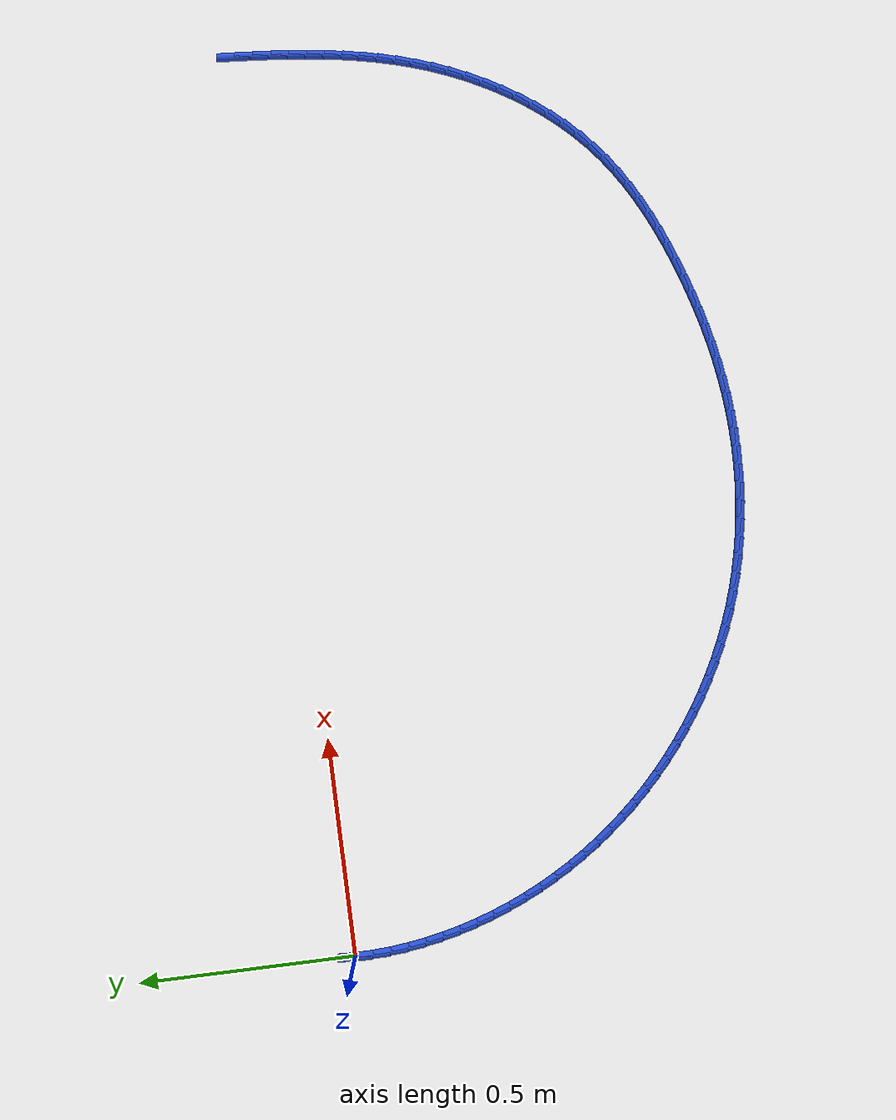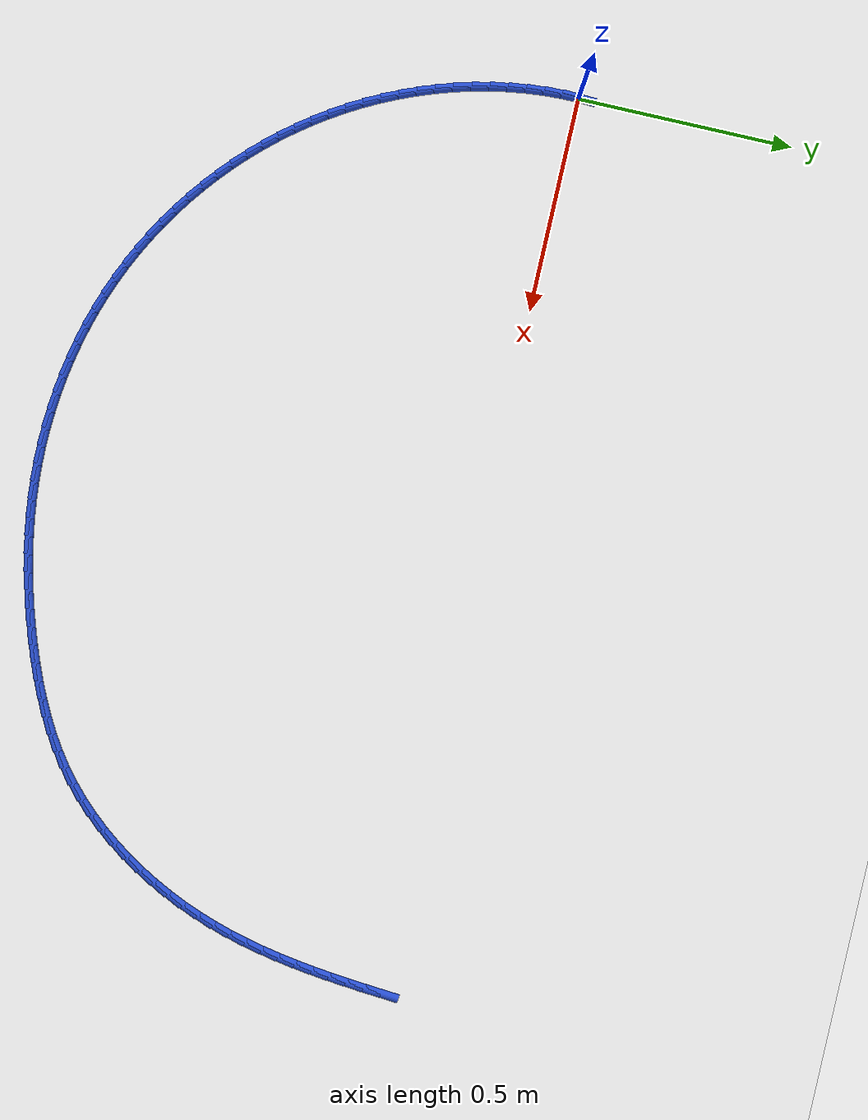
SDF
<sdf version="1.6">
 <world name="default">
  <model name="ground_plane">
   <static>1</static>
   <link name="link">
    <collision name="collision">
     <geometry><plane><normal>0 0 1</normal><size>100 100</size></plane></geometry>
     <surface><friction><ode><mu>100</mu><mu2>50</mu2></ode></friction></surface>
    </collision>
    <visual name="visual">
     <cast_shadows>0</cast_shadows>
     <geometry><plane><normal>0 0 1</normal><size>100 100</size></plane></geometry>
     <material>
      <script><uri>file://media/materials/scripts/gazebo.material</uri><name>Gazebo/WhiteGlow</name></script>
     </material>
    </visual>
   </link>
  </model>
  <model name="line">
   <link name="link_0">
    <pose>-6.938893903907228e-17 5.551115123125783e-17 0.01 0 1.57 1.5295211178930346</pose>
    <collision name="collision">
     <geometry><cylinder><radius>0.01</radius><length>0.08</length></cylinder></geometry>
    </collision>
    <visual name="visual">
     <material>
      <script><name>Gazebo/Blue</name><uri>file://media/materials/scripts/gazebo.material</uri></script>
     </material>
     <geometry><cylinder><radius>0.01</radius><length>0.08</length></cylinder></geometry>
    </visual>
   </link>
   <link name="link_81">
    <pose>2.0990178060190656 0.019875055912803596 0.01 0 1.57 1.4926832107745691</pose>
    <collision name="collision">
     <geometry><cylinder><radius>0.01</radius><length>0.08</length></cylinder></geometry>
    </collision>
    <visual name="visual">
     <material>
      <script><name>Gazebo/Blue</name><uri>file://media/materials/scripts/gazebo.material</uri></script>
     </material>
     <geometry><cylinder><radius>0.01</radius><length>0.08</length></cylinder></geometry>
    </visual>
   </link>
   <link name="link_82">
    <pose>2.0957071992923137 -0.022420921470128787 0.01 0 1.57 1.4836548767339648</pose>
    <collision name="collision">
     <geometry><cylinder><radius>0.01</radius><length>0.08</length></cylinder></geometry>
    </collision>
    <visual name="visual">
     <material>
      <script><name>Gazebo/Blue</name><uri>file://media/materials/scripts/gazebo.material</uri></script>
     </material>
     <geometry><cylinder><radius>0.01</radius><length>0.08</length></cylinder></geometry>
    </visual>
   </link>
   <link name="link_83">
    <pose>2.092038540830168 -0.06441434259548094 0.01 0 1.57 1.4710652988678214</pose>
    <collision name="collision">
     <geometry><cylinder><radius>0.01</radius><length>0.08</length></cylinder></geometry>
    </collision>
    <visual name="visual">
     <material>
      <script><name>Gazebo/Blue</name><uri>file://media/materials/scripts/gazebo.material</uri></script>
     </material>
     <geometry><cylinder><radius>0.01</radius><length>0.08</length></cylinder></geometry>
    </visual>
   </link>
   <link name="link_84">
    <pose>2.087866792371639 -0.10610556188633669 0.01 0 1.57 1.454866451488957</pose>
    <collision name="collision">
     <geometry><cylinder><radius>0.01</radius><length>0.08</length></cylinder></geometry>
    </collision>
    <visual name="visual">
     <material>
      <script><name>Gazebo/Blue</name><uri>file://media/materials/scripts/gazebo.material</uri></script>
     </material>
     <geometry><cylinder><radius>0.01</radius><length>0.08</length></cylinder></geometry>
    </visual>
   </link>
   <link name="link_85">
    <pose>2.0830469156557374 -0.14749493376577896 0.01 0 1.57 1.4350260833197779</pose>
    <collision name="collision">
     <geometry><cylinder><radius>0.01</radius><length>0.08</length></cylinder></geometry>
    </collision>
    <visual name="visual">
     <material>
      <script><name>Gazebo/Blue</name><uri>file://media/materials/scripts/gazebo.material</uri></script>
     </material>
     <geometry><cylinder><radius>0.01</radius><length>0.08</length></cylinder></geometry>
    </visual>
   </link>
   <link name="link_86">
    <pose>2.0774338724214747 -0.1885828126568909 0.01 0 1.57 1.4115346442727235</pose>
    <collision name="collision">
     <geometry><cylinder><radius>0.01</radius><length>0.08</length></cylinder></geometry>
    </collision>
    <visual name="visual">
     <material>
      <script><name>Gazebo/Blue</name><uri>file://media/materials/scripts/gazebo.material</uri></script>
     </material>
     <geometry><cylinder><radius>0.01</radius><length>0.08</length></cylinder></geometry>
    </visual>
   </link>
   <link name="link_87">
    <pose>2.0708826244078598 -0.22936955298275613 0.01 0 1.57 1.3844136220203782</pose>
    <collision name="collision">
     <geometry><cylinder><radius>0.01</radius><length>0.08</length></cylinder></geometry>
    </collision>
    <visual name="visual">
     <material>
      <script><name>Gazebo/Blue</name><uri>file://media/materials/scripts/gazebo.material</uri></script>
     </material>
     <geometry><cylinder><radius>0.01</radius><length>0.08</length></cylinder></geometry>
    </visual>
   </link>
   <link name="link_88">
    <pose>2.063248133353905 -0.26985550916645623 0.01 0 1.57 1.3537249263923825</pose>
    <collision name="collision">
     <geometry><cylinder><radius>0.01</radius><length>0.08</length></cylinder></geometry>
    </collision>
    <visual name="visual">
     <material>
      <script><name>Gazebo/Blue</name><uri>file://media/materials/scripts/gazebo.material</uri></script>
     </material>
     <geometry><cylinder><radius>0.01</radius><length>0.08</length></cylinder></geometry>
    </visual>
   </link>
   <link name="link_89">
    <pose>2.0543853609986216 -0.310041035631075 0.01 0 1.57 1.3195806752709096</pose>
    <collision name="collision">
     <geometry><cylinder><radius>0.01</radius><length>0.08</length></cylinder></geometry>
    </collision>
    <visual name="visual">
     <material>
      <script><name>Gazebo/Blue</name><uri>file://media/materials/scripts/gazebo.material</uri></script>
     </material>
     <geometry><cylinder><radius>0.01</radius><length>0.08</length></cylinder></geometry>
    </visual>
   </link>
   <link name="link_90">
    <pose>2.044149269081018 -0.3499264867996954 0.01 0 1.57 1.2821524114344396</pose>
    <collision name="collision">
     <geometry><cylinder><radius>0.01</radius><length>0.08</length></cylinder></geometry>
    </collision>
    <visual name="visual">
     <material>
      <script><name>Gazebo/Blue</name><uri>file://media/materials/scripts/gazebo.material</uri></script>
     </material>
     <geometry><cylinder><radius>0.01</radius><length>0.08</length></cylinder></geometry>
    </visual>
   </link>
   <link name="link_91">
    <pose>2.032394819340106 -0.3895122170954004 0.01 0 1.57 1.241680064681204</pose>
    <collision name="collision">
     <geometry><cylinder><radius>0.01</radius><length>0.08</length></cylinder></geometry>
    </collision>
    <visual name="visual">
     <material>
      <script><name>Gazebo/Blue</name><uri>file://media/materials/scripts/gazebo.material</uri></script>
     </material>
     <geometry><cylinder><radius>0.01</radius><length>0.08</length></cylinder></geometry>
    </visual>
   </link>
   <link name="link_92">
    <pose>2.0189770824673055 -0.4287984660180517 0.01 0 1.57 1.1990178574637749</pose>
    <collision name="collision">
     <geometry><cylinder><radius>0.01</radius><length>0.08</length></cylinder></geometry>
    </collision>
    <visual name="visual">
     <material>
      <script><name>Gazebo/Blue</name><uri>file://media/materials/scripts/gazebo.material</uri></script>
     </material>
     <geometry><cylinder><radius>0.01</radius><length>0.08</length></cylinder></geometry>
    </visual>
   </link>
   <link name="link_93">
    <pose>2.003792755313101 -0.4677415657101033 0.01 0 1.57 1.1555575199309271</pose>
    <collision name="collision">
     <geometry><cylinder><radius>0.01</radius><length>0.08</length></cylinder></geometry>
    </collision>
    <visual name="visual">
     <material>
      <script><name>Gazebo/Blue</name><uri>file://media/materials/scripts/gazebo.material</uri></script>
     </material>
     <geometry><cylinder><radius>0.01</radius><length>0.08</length></cylinder></geometry>
    </visual>
   </link>
   <link name="link_94">
    <pose>1.9868427681966372 -0.5061879026388773 0.01 0 1.57 1.1111982553909383</pose>
    <collision name="collision">
     <geometry><cylinder><radius>0.01</radius><length>0.08</length></cylinder></geometry>
    </collision>
    <visual name="visual">
     <material>
      <script><name>Gazebo/Blue</name><uri>file://media/materials/scripts/gazebo.material</uri></script>
     </material>
     <geometry><cylinder><radius>0.01</radius><length>0.08</length></cylinder></geometry>
    </visual>
   </link>
   <link name="link_95">
    <pose>1.9681441021813377 -0.5439669329139194 0.01 0 1.57 1.0656135610040476</pose>
    <collision name="collision">
     <geometry><cylinder><radius>0.01</radius><length>0.08</length></cylinder></geometry>
    </collision>
    <visual name="visual">
     <material>
      <script><name>Gazebo/Blue</name><uri>file://media/materials/scripts/gazebo.material</uri></script>
     </material>
     <geometry><cylinder><radius>0.01</radius><length>0.08</length></cylinder></geometry>
    </visual>
   </link>
   <link name="link_96">
    <pose>1.9477137383306284 -0.5809081126447766 0.01 0 1.57 1.0184836160174242</pose>
    <collision name="collision">
     <geometry><cylinder><radius>0.01</radius><length>0.08</length></cylinder></geometry>
    </collision>
    <visual name="visual">
     <material>
      <script><name>Gazebo/Blue</name><uri>file://media/materials/scripts/gazebo.material</uri></script>
     </material>
     <geometry><cylinder><radius>0.01</radius><length>0.08</length></cylinder></geometry>
    </visual>
   </link>
   <link name="link_97">
    <pose>1.9255686577079347 -0.6168408979409933 0.01 0 1.57 0.9694954440958722</pose>
    <collision name="collision">
     <geometry><cylinder><radius>0.01</radius><length>0.08</length></cylinder></geometry>
    </collision>
    <visual name="visual">
     <material>
      <script><name>Gazebo/Blue</name><uri>file://media/materials/scripts/gazebo.material</uri></script>
     </material>
     <geometry><cylinder><radius>0.01</radius><length>0.08</length></cylinder></geometry>
    </visual>
   </link>
   <link name="link_98">
    <pose>1.9017258413766813 -0.6515947449121164 0.01 0 1.57 0.9183454307983163</pose>
    <collision name="collision">
     <geometry><cylinder><radius>0.01</radius><length>0.08</length></cylinder></geometry>
    </collision>
    <visual name="visual">
     <material>
      <script><name>Gazebo/Blue</name><uri>file://media/materials/scripts/gazebo.material</uri></script>
     </material>
     <geometry><cylinder><radius>0.01</radius><length>0.08</length></cylinder></geometry>
    </visual>
   </link>
   <link name="link_99">
    <pose>1.8762022704002934 -0.6849991096676916 0.01 0 1.57 0.8647446873899721</pose>
    <collision name="collision">
     <geometry><cylinder><radius>0.01</radius><length>0.08</length></cylinder></geometry>
    </collision>
    <visual name="visual">
     <material>
      <script><name>Gazebo/Blue</name><uri>file://media/materials/scripts/gazebo.material</uri></script>
     </material>
     <geometry><cylinder><radius>0.01</radius><length>0.08</length></cylinder></geometry>
    </visual>
   </link>
   <link name="link_100">
    <pose>1.8490149258421968 -0.7168834483172654 0.01 0 1.57 0.8084277997164566</pose>
    <collision name="collision">
     <geometry><cylinder><radius>0.01</radius><length>0.08</length></cylinder></geometry>
    </collision>
    <visual name="visual">
     <material>
      <script><name>Gazebo/Blue</name><uri>file://media/materials/scripts/gazebo.material</uri></script>
     </material>
     <geometry><cylinder><radius>0.01</radius><length>0.08</length></cylinder></geometry>
    </visual>
   </link>
   <link name="link_101">
    <pose>1.8201807887658155 -0.7470772169703838 0.01 0 1.57 0.7491654407140631</pose>
    <collision name="collision">
     <geometry><cylinder><radius>0.01</radius><length>0.08</length></cylinder></geometry>
    </collision>
    <visual name="visual">
     <material>
      <script><name>Gazebo/Blue</name><uri>file://media/materials/scripts/gazebo.material</uri></script>
     </material>
     <geometry><cylinder><radius>0.01</radius><length>0.08</length></cylinder></geometry>
    </visual>
   </link>
   <link name="link_102">
    <pose>1.7897168402345756 -0.7754098717365918 0.01 0 1.57 0.6869269722850196</pose>
    <collision name="collision">
     <geometry><cylinder><radius>0.01</radius><length>0.08</length></cylinder></geometry>
    </collision>
    <visual name="visual">
     <material>
      <script><name>Gazebo/Blue</name><uri>file://media/materials/scripts/gazebo.material</uri></script>
     </material>
     <geometry><cylinder><radius>0.01</radius><length>0.08</length></cylinder></geometry>
    </visual>
   </link>
   <link name="link_103">
    <pose>1.757642816170259 -0.8017164361207609 0.01 0 1.57 0.625412291579322</pose>
    <collision name="collision">
     <geometry><cylinder><radius>0.01</radius><length>0.08</length></cylinder></geometry>
    </collision>
    <visual name="visual">
     <material>
      <script><name>Gazebo/Blue</name><uri>file://media/materials/scripts/gazebo.material</uri></script>
     </material>
     <geometry><cylinder><radius>0.01</radius><length>0.08</length></cylinder></geometry>
    </visual>
   </link>
   <link name="link_104">
    <pose>1.7240491503911626 -0.825974809626261 0.01 0 1.57 0.5687668562688685</pose>
    <collision name="collision">
     <geometry><cylinder><radius>0.01</radius><length>0.08</length></cylinder></geometry>
    </collision>
    <visual name="visual">
     <material>
      <script><name>Gazebo/Blue</name><uri>file://media/materials/scripts/gazebo.material</uri></script>
     </material>
     <geometry><cylinder><radius>0.01</radius><length>0.08</length></cylinder></geometry>
    </visual>
   </link>
   <link name="link_105">
    <pose>1.6891013076594394 -0.8483145245708864 0.01 0 1.57 0.5172772773450488</pose>
    <collision name="collision">
     <geometry><cylinder><radius>0.01</radius><length>0.08</length></cylinder></geometry>
    </collision>
    <visual name="visual">
     <material>
      <script><name>Gazebo/Blue</name><uri>file://media/materials/scripts/gazebo.material</uri></script>
     </material>
     <geometry><cylinder><radius>0.01</radius><length>0.08</length></cylinder></geometry>
    </visual>
   </link>
   <link name="link_106">
    <pose>1.652968375166457 -0.8688724339738406 0.01 0 1.57 0.4709103575120801</pose>
    <collision name="collision">
     <geometry><cylinder><radius>0.01</radius><length>0.08</length></cylinder></geometry>
    </collision>
    <visual name="visual">
     <material>
      <script><name>Gazebo/Blue</name><uri>file://media/materials/scripts/gazebo.material</uri></script>
     </material>
     <geometry><cylinder><radius>0.01</radius><length>0.08</length></cylinder></geometry>
    </visual>
   </link>
   <link name="link_107">
    <pose>1.6158194401035821 -0.8877853908543268 0.01 0 1.57 0.42954677452381224</pose>
    <collision name="collision">
     <geometry><cylinder><radius>0.01</radius><length>0.08</length></cylinder></geometry>
    </collision>
    <visual name="visual">
     <material>
      <script><name>Gazebo/Blue</name><uri>file://media/materials/scripts/gazebo.material</uri></script>
     </material>
     <geometry><cylinder><radius>0.01</radius><length>0.08</length></cylinder></geometry>
    </visual>
   </link>
   <link name="link_108">
    <pose>1.5778235896621817 -0.9051902482315488 0.01 0 1.57 0.3930179317972818</pose>
    <collision name="collision">
     <geometry><cylinder><radius>0.01</radius><length>0.08</length></cylinder></geometry>
    </collision>
    <visual name="visual">
     <material>
      <script><name>Gazebo/Blue</name><uri>file://media/materials/scripts/gazebo.material</uri></script>
     </material>
     <geometry><cylinder><radius>0.01</radius><length>0.08</length></cylinder></geometry>
    </visual>
   </link>
   <link name="link_109">
    <pose>1.5391499110336226 -0.9212238591247105 0.01 0 1.57 0.3611360814619073</pose>
    <collision name="collision">
     <geometry><cylinder><radius>0.01</radius><length>0.08</length></cylinder></geometry>
    </collision>
    <visual name="visual">
     <material>
      <script><name>Gazebo/Blue</name><uri>file://media/materials/scripts/gazebo.material</uri></script>
     </material>
     <geometry><cylinder><radius>0.01</radius><length>0.08</length></cylinder></geometry>
    </visual>
   </link>
   <link name="link_110">
    <pose>1.4999674914092713 -0.9360230765530151 0.01 0 1.57 0.3336070186270522</pose>
    <collision name="collision">
     <geometry><cylinder><radius>0.01</radius><length>0.08</length></cylinder></geometry>
    </collision>
    <visual name="visual">
     <material>
      <script><name>Gazebo/Blue</name><uri>file://media/materials/scripts/gazebo.material</uri></script>
     </material>
     <geometry><cylinder><radius>0.01</radius><length>0.08</length></cylinder></geometry>
    </visual>
   </link>
   <link name="link_111">
    <pose>1.4604421991708059 -0.9497209648511405 0.01 0 1.57 0.30763145833430544</pose>
    <collision name="collision">
     <geometry><cylinder><radius>0.01</radius><length>0.08</length></cylinder></geometry>
    </collision>
    <visual name="visual">
     <material>
      <script><name>Gazebo/Blue</name><uri>file://media/materials/scripts/gazebo.material</uri></script>
     </material>
     <geometry><cylinder><radius>0.01</radius><length>0.08</length></cylinder></geometry>
    </visual>
   </link>
   <link name="link_112">
    <pose>1.4206626375338411 -0.9623596437601277 0.01 0 1.57 0.2804455357772443</pose>
    <collision name="collision">
     <geometry><cylinder><radius>0.01</radius><length>0.08</length></cylinder></geometry>
    </collision>
    <visual name="visual">
     <material>
      <script><name>Gazebo/Blue</name><uri>file://media/materials/scripts/gazebo.material</uri></script>
     </material>
     <geometry><cylinder><radius>0.01</radius><length>0.08</length></cylinder></geometry>
    </visual>
   </link>
   <link name="link_113">
    <pose>1.3806383048443014 -0.9738881230130428 0.01 0 1.57 0.25191535399743586</pose>
    <collision name="collision">
     <geometry><cylinder><radius>0.01</radius><length>0.08</length></cylinder></geometry>
    </collision>
    <visual name="visual">
     <material>
      <script><name>Gazebo/Blue</name><uri>file://media/materials/scripts/gazebo.material</uri></script>
     </material>
     <geometry><cylinder><radius>0.01</radius><length>0.08</length></cylinder></geometry>
    </visual>
   </link>
   <link name="link_114">
    <pose>1.3403751126338301 -0.9842511905003819 0.01 0 1.57 0.2220385258282433</pose>
    <collision name="collision">
     <geometry><cylinder><radius>0.01</radius><length>0.08</length></cylinder></geometry>
    </collision>
    <visual name="visual">
     <material>
      <script><name>Gazebo/Blue</name><uri>file://media/materials/scripts/gazebo.material</uri></script>
     </material>
     <geometry><cylinder><radius>0.01</radius><length>0.08</length></cylinder></geometry>
    </visual>
   </link>
   <link name="link_115">
    <pose>1.2998789724340702 -0.9933936341126414 0.01 0 1.57 0.1908223513933292</pose>
    <collision name="collision">
     <geometry><cylinder><radius>0.01</radius><length>0.08</length></cylinder></geometry>
    </collision>
    <visual name="visual">
     <material>
      <script><name>Gazebo/Blue</name><uri>file://media/materials/scripts/gazebo.material</uri></script>
     </material>
     <geometry><cylinder><radius>0.01</radius><length>0.08</length></cylinder></geometry>
    </visual>
   </link>
   <link name="link_116">
    <pose>1.2591557957766657 -1.001260241740318 0.01 0 1.57 0.1582854426499439</pose>
    <collision name="collision">
     <geometry><cylinder><radius>0.01</radius><length>0.08</length></cylinder></geometry>
    </collision>
    <visual name="visual">
     <material>
      <script><name>Gazebo/Blue</name><uri>file://media/materials/scripts/gazebo.material</uri></script>
     </material>
     <geometry><cylinder><radius>0.01</radius><length>0.08</length></cylinder></geometry>
    </visual>
   </link>
   <link name="link_117">
    <pose>1.2182114941932605 -1.0077958012739072 0.01 0 1.57 0.12445929182832108</pose>
    <collision name="collision">
     <geometry><cylinder><radius>0.01</radius><length>0.08</length></cylinder></geometry>
    </collision>
    <visual name="visual">
     <material>
      <script><name>Gazebo/Blue</name><uri>file://media/materials/scripts/gazebo.material</uri></script>
     </material>
     <geometry><cylinder><radius>0.01</radius><length>0.08</length></cylinder></geometry>
    </visual>
   </link>
   <link name="link_118">
    <pose>1.177051979215498 -1.012945100603906 0.01 0 1.57 0.08939212864761938</pose>
    <collision name="collision">
     <geometry><cylinder><radius>0.01</radius><length>0.08</length></cylinder></geometry>
    </collision>
    <visual name="visual">
     <material>
      <script><name>Gazebo/Blue</name><uri>file://media/materials/scripts/gazebo.material</uri></script>
     </material>
     <geometry><cylinder><radius>0.01</radius><length>0.08</length></cylinder></geometry>
    </visual>
   </link>
   <link name="link_119">
    <pose>1.1356832950716127 -1.0166530171997803 0.01 0 1.57 0.05348131813190846</pose>
    <collision name="collision">
     <geometry><cylinder><radius>0.01</radius><length>0.08</length></cylinder></geometry>
    </collision>
    <visual name="visual">
     <material>
      <script><name>Gazebo/Blue</name><uri>file://media/materials/scripts/gazebo.material</uri></script>
     </material>
     <geometry><cylinder><radius>0.01</radius><length>0.08</length></cylinder></geometry>
    </visual>
   </link>
   <link name="link_120">
    <pose>1.094130736634863 -1.0188774239887761 0.01 0 1.57 0.01740232369855499</pose>
    <collision name="collision">
     <geometry><cylinder><radius>0.01</radius><length>0.08</length></cylinder></geometry>
    </collision>
    <visual name="visual">
     <material>
      <script><name>Gazebo/Blue</name><uri>file://media/materials/scripts/gazebo.material</uri></script>
     </material>
     <geometry><cylinder><radius>0.01</radius><length>0.08</length></cylinder></geometry>
    </visual>
   </link>
   <link name="link_121">
    <pose>1.0524588410414755 -1.0196026850193967 0.01 0 1.57 -0.018843851688016527</pose>
    <collision name="collision">
     <geometry><cylinder><radius>0.01</radius><length>0.08</length></cylinder></geometry>
    </collision>
    <visual name="visual">
     <material>
      <script><name>Gazebo/Blue</name><uri>file://media/materials/scripts/gazebo.material</uri></script>
     </material>
     <geometry><cylinder><radius>0.01</radius><length>0.08</length></cylinder></geometry>
    </visual>
   </link>
   <link name="link_122">
    <pose>1.0107369242123718 -1.0188163903356706 0.01 0 1.57 -0.055341875188145366</pose>
    <collision name="collision">
     <geometry><cylinder><radius>0.01</radius><length>0.08</length></cylinder></geometry>
    </collision>
    <visual name="visual">
     <material>
      <script><name>Gazebo/Blue</name><uri>file://media/materials/scripts/gazebo.material</uri></script>
     </material>
     <geometry><cylinder><radius>0.01</radius><length>0.08</length></cylinder></geometry>
    </visual>
   </link>
   <link name="link_123">
    <pose>0.9690343020684696 -1.0165061299816265 0.01 0 1.57 -0.09217414750494127</pose>
    <collision name="collision">
     <geometry><cylinder><radius>0.01</radius><length>0.08</length></cylinder></geometry>
    </collision>
    <visual name="visual">
     <material>
      <script><name>Gazebo/Blue</name><uri>file://media/materials/scripts/gazebo.material</uri></script>
     </material>
     <geometry><cylinder><radius>0.01</radius><length>0.08</length></cylinder></geometry>
    </visual>
   </link>
   <link name="link_124">
    <pose>0.9274202905306893 -1.0126594940012925 0.01 0 1.57 -0.12942042331249246</pose>
    <collision name="collision">
     <geometry><cylinder><radius>0.01</radius><length>0.08</length></cylinder></geometry>
    </collision>
    <visual name="visual">
     <material>
      <script><name>Gazebo/Blue</name><uri>file://media/materials/scripts/gazebo.material</uri></script>
     </material>
     <geometry><cylinder><radius>0.01</radius><length>0.08</length></cylinder></geometry>
    </visual>
   </link>
   <link name="link_125">
    <pose>0.88596420551995 -1.0072640724386976 0.01 0 1.57 -0.1671573276446945</pose>
    <collision name="collision">
     <geometry><cylinder><radius>0.01</radius><length>0.08</length></cylinder></geometry>
    </collision>
    <visual name="visual">
     <material>
      <script><name>Gazebo/Blue</name><uri>file://media/materials/scripts/gazebo.material</uri></script>
     </material>
     <geometry><cylinder><radius>0.01</radius><length>0.08</length></cylinder></geometry>
    </visual>
   </link>
   <link name="link_126">
    <pose>0.8447353629571703 -1.00030745533787 0.01 0 1.57 -0.20545774986679027</pose>
    <collision name="collision">
     <geometry><cylinder><radius>0.01</radius><length>0.08</length></cylinder></geometry>
    </collision>
    <visual name="visual">
     <material>
      <script><name>Gazebo/Blue</name><uri>file://media/materials/scripts/gazebo.material</uri></script>
     </material>
     <geometry><cylinder><radius>0.01</radius><length>0.08</length></cylinder></geometry>
    </visual>
   </link>
   <link name="link_127">
    <pose>0.8038030787632707 -0.9917772327428379 0.01 0 1.57 -0.24439009945107945</pose>
    <collision name="collision">
     <geometry><cylinder><radius>0.01</radius><length>0.08</length></cylinder></geometry>
    </collision>
    <visual name="visual">
     <material>
      <script><name>Gazebo/Blue</name><uri>file://media/materials/scripts/gazebo.material</uri></script>
     </material>
     <geometry><cylinder><radius>0.01</radius><length>0.08</length></cylinder></geometry>
    </visual>
   </link>
   <link name="link_128">
    <pose>0.7632366688591705 -0.9816609946976305 0.01 0 1.57 -0.2840174116500242</pose>
    <collision name="collision">
     <geometry><cylinder><radius>0.01</radius><length>0.08</length></cylinder></geometry>
    </collision>
    <visual name="visual">
     <material>
      <script><name>Gazebo/Blue</name><uri>file://media/materials/scripts/gazebo.material</uri></script>
     </material>
     <geometry><cylinder><radius>0.01</radius><length>0.08</length></cylinder></geometry>
    </visual>
   </link>
   <link name="link_129">
    <pose>0.7231054491657888 -0.9699463312462756 0.01 0 1.57 -0.3243961191087907</pose>
    <collision name="collision">
     <geometry><cylinder><radius>0.01</radius><length>0.08</length></cylinder></geometry>
    </collision>
    <visual name="visual">
     <material>
      <script><name>Gazebo/Blue</name><uri>file://media/materials/scripts/gazebo.material</uri></script>
     </material>
     <geometry><cylinder><radius>0.01</radius><length>0.08</length></cylinder></geometry>
    </visual>
   </link>
   <link name="link_130">
    <pose>0.6834787340517553 -0.9566208397470761 0.01 0 1.57 -0.36529414271251476</pose>
    <collision name="collision">
     <geometry><cylinder><radius>0.01</radius><length>0.08</length></cylinder></geometry>
    </collision>
    <visual name="visual">
     <material>
      <script><name>Gazebo/Blue</name><uri>file://media/materials/scripts/gazebo.material</uri></script>
     </material>
     <geometry><cylinder><radius>0.01</radius><length>0.08</length></cylinder></geometry>
    </visual>
   </link>
   <link name="link_131">
    <pose>0.6444233678736677 -0.9416837560727058 0.01 0 1.57 -0.4059136012684747</pose>
    <collision name="collision">
     <geometry><cylinder><radius>0.01</radius><length>0.08</length></cylinder></geometry>
    </collision>
    <visual name="visual">
     <material>
      <script><name>Gazebo/Blue</name><uri>file://media/materials/scripts/gazebo.material</uri></script>
     </material>
     <geometry><cylinder><radius>0.01</radius><length>0.08</length></cylinder></geometry>
    </visual>
   </link>
   <link name="link_132">
    <pose>0.6059987166265507 -0.9251695535835799 0.01 0 1.57 -0.4461607994327784</pose>
    <collision name="collision">
     <geometry><cylinder><radius>0.01</radius><length>0.08</length></cylinder></geometry>
    </collision>
    <visual name="visual">
     <material>
      <script><name>Gazebo/Blue</name><uri>file://media/materials/scripts/gazebo.material</uri></script>
     </material>
     <geometry><cylinder><radius>0.01</radius><length>0.08</length></cylinder></geometry>
    </visual>
   </link>
   <link name="link_133">
    <pose>0.5682627364070354 -0.9071193489772603 0.01 0 1.57 -0.486106852512497</pose>
    <collision name="collision">
     <geometry><cylinder><radius>0.01</radius><length>0.08</length></cylinder></geometry>
    </collision>
    <visual name="visual">
     <material>
      <script><name>Gazebo/Blue</name><uri>file://media/materials/scripts/gazebo.material</uri></script>
     </material>
     <geometry><cylinder><radius>0.01</radius><length>0.08</length></cylinder></geometry>
    </visual>
   </link>
   <link name="link_134">
    <pose>0.5312733833117543 -0.8875742589513095 0.01 0 1.57 -0.5258255476359388</pose>
    <collision name="collision">
     <geometry><cylinder><radius>0.01</radius><length>0.08</length></cylinder></geometry>
    </collision>
    <visual name="visual">
     <material>
      <script><name>Gazebo/Blue</name><uri>file://media/materials/scripts/gazebo.material</uri></script>
     </material>
     <geometry><cylinder><radius>0.01</radius><length>0.08</length></cylinder></geometry>
    </visual>
   </link>
   <link name="link_135">
    <pose>0.49508861343733973 -0.8665754002032898 0.01 0 1.57 -0.565392654627666</pose>
    <collision name="collision">
     <geometry><cylinder><radius>0.01</radius><length>0.08</length></cylinder></geometry>
    </collision>
    <visual name="visual">
     <material>
      <script><name>Gazebo/Blue</name><uri>file://media/materials/scripts/gazebo.material</uri></script>
     </material>
     <geometry><cylinder><radius>0.01</radius><length>0.08</length></cylinder></geometry>
    </visual>
   </link>
   <link name="link_136">
    <pose>0.4597663828804229 -0.8441638894307635 0.01 0 1.57 -0.6048853006406869</pose>
    <collision name="collision">
     <geometry><cylinder><radius>0.01</radius><length>0.08</length></cylinder></geometry>
    </collision>
    <visual name="visual">
     <material>
      <script><name>Gazebo/Blue</name><uri>file://media/materials/scripts/gazebo.material</uri></script>
     </material>
     <geometry><cylinder><radius>0.01</radius><length>0.08</length></cylinder></geometry>
    </visual>
   </link>
   <link name="link_137">
    <pose>0.42536464773763744 -0.820380843331293 0.01 0 1.57 -0.6443813884926345</pose>
    <collision name="collision">
     <geometry><cylinder><radius>0.01</radius><length>0.08</length></cylinder></geometry>
    </collision>
    <visual name="visual">
     <material>
      <script><name>Gazebo/Blue</name><uri>file://media/materials/scripts/gazebo.material</uri></script>
     </material>
     <geometry><cylinder><radius>0.01</radius><length>0.08</length></cylinder></geometry>
    </visual>
   </link>
   <link name="link_138">
    <pose>0.39194136410561514 -0.7952673786024413 0.01 0 1.57 -0.6839590372309862</pose>
    <collision name="collision">
     <geometry><cylinder><radius>0.01</radius><length>0.08</length></cylinder></geometry>
    </collision>
    <visual name="visual">
     <material>
      <script><name>Gazebo/Blue</name><uri>file://media/materials/scripts/gazebo.material</uri></script>
     </material>
     <geometry><cylinder><radius>0.01</radius><length>0.08</length></cylinder></geometry>
    </visual>
   </link>
   <link name="link_139">
    <pose>0.359554488080988 -0.7688646119417704 0.01 0 1.57 -0.723696022653154</pose>
    <collision name="collision">
     <geometry><cylinder><radius>0.01</radius><length>0.08</length></cylinder></geometry>
    </collision>
    <visual name="visual">
     <material>
      <script><name>Gazebo/Blue</name><uri>file://media/materials/scripts/gazebo.material</uri></script>
     </material>
     <geometry><cylinder><radius>0.01</radius><length>0.08</length></cylinder></geometry>
    </visual>
   </link>
   <link name="link_140">
    <pose>0.32826197576038807 -0.741213660046842 0.01 0 1.57 -0.7636691952449495</pose>
    <collision name="collision">
     <geometry><cylinder><radius>0.01</radius><length>0.08</length></cylinder></geometry>
    </collision>
    <visual name="visual">
     <material>
      <script><name>Gazebo/Blue</name><uri>file://media/materials/scripts/gazebo.material</uri></script>
     </material>
     <geometry><cylinder><radius>0.01</radius><length>0.08</length></cylinder></geometry>
    </visual>
   </link>
   <link name="link_141">
    <pose>0.29812178324044725 -0.7123556396152187 0.01 0 1.57 -0.8039180517072082</pose>
    <collision name="collision">
     <geometry><cylinder><radius>0.01</radius><length>0.08</length></cylinder></geometry>
    </collision>
    <visual name="visual">
     <material>
      <script><name>Gazebo/Blue</name><uri>file://media/materials/scripts/gazebo.material</uri></script>
     </material>
     <geometry><cylinder><radius>0.01</radius><length>0.08</length></cylinder></geometry>
    </visual>
   </link>
   <link name="link_142">
    <pose>0.26918995938256357 -0.6823318393359236 0.01 0 1.57 -0.8442577785028305</pose>
    <collision name="collision">
     <geometry><cylinder><radius>0.01</radius><length>0.08</length></cylinder></geometry>
    </collision>
    <visual name="visual">
     <material>
      <script><name>Gazebo/Blue</name><uri>file://media/materials/scripts/gazebo.material</uri></script>
     </material>
     <geometry><cylinder><radius>0.01</radius><length>0.08</length></cylinder></geometry>
    </visual>
   </link>
   <link name="link_143">
    <pose>0.24150942794150237 -0.6511847314993535 0.01 0 1.57 -0.8846222105937679</pose>
    <collision name="collision">
     <geometry><cylinder><radius>0.01</radius><length>0.08</length></cylinder></geometry>
    </collision>
    <visual name="visual">
     <material>
      <script><name>Gazebo/Blue</name><uri>file://media/materials/scripts/gazebo.material</uri></script>
     </material>
     <geometry><cylinder><radius>0.01</radius><length>0.08</length></cylinder></geometry>
    </visual>
   </link>
   <link name="link_144">
    <pose>0.21511758937862369 -0.6189572864777784 0.01 0 1.57 -0.9250449805072554</pose>
    <collision name="collision">
     <geometry><cylinder><radius>0.01</radius><length>0.08</length></cylinder></geometry>
    </collision>
    <visual name="visual">
     <material>
      <script><name>Gazebo/Blue</name><uri>file://media/materials/scripts/gazebo.material</uri></script>
     </material>
     <geometry><cylinder><radius>0.01</radius><length>0.08</length></cylinder></geometry>
    </visual>
   </link>
   <link name="link_145">
    <pose>0.19005182493961809 -0.5856924763763056 0.01 0 1.57 -0.96555956166629</pose>
    <collision name="collision">
     <geometry><cylinder><radius>0.01</radius><length>0.08</length></cylinder></geometry>
    </collision>
    <visual name="visual">
     <material>
      <script><name>Gazebo/Blue</name><uri>file://media/materials/scripts/gazebo.material</uri></script>
     </material>
     <geometry><cylinder><radius>0.01</radius><length>0.08</length></cylinder></geometry>
    </visual>
   </link>
   <link name="link_146">
    <pose>0.16634951587017602 -0.5514332733000427 0.01 0 1.57 -1.0061983403446844</pose>
    <collision name="collision">
     <geometry><cylinder><radius>0.01</radius><length>0.08</length></cylinder></geometry>
    </collision>
    <visual name="visual">
     <material>
      <script><name>Gazebo/Blue</name><uri>file://media/materials/scripts/gazebo.material</uri></script>
     </material>
     <geometry><cylinder><radius>0.01</radius><length>0.08</length></cylinder></geometry>
    </visual>
   </link>
   <link name="link_147">
    <pose>0.14404804341598904 -0.5162226493540989 0.01 0 1.57 -1.046992042050832</pose>
    <collision name="collision">
     <geometry><cylinder><radius>0.01</radius><length>0.08</length></cylinder></geometry>
    </collision>
    <visual name="visual">
     <material>
      <script><name>Gazebo/Blue</name><uri>file://media/materials/scripts/gazebo.material</uri></script>
     </material>
     <geometry><cylinder><radius>0.01</radius><length>0.08</length></cylinder></geometry>
    </visual>
   </link>
   <link name="link_148">
    <pose>0.12318478882274747 -0.4801035766435814 0.01 0 1.57 -1.0879691519230672</pose>
    <collision name="collision">
     <geometry><cylinder><radius>0.01</radius><length>0.08</length></cylinder></geometry>
    </collision>
    <visual name="visual">
     <material>
      <script><name>Gazebo/Blue</name><uri>file://media/materials/scripts/gazebo.material</uri></script>
     </material>
     <geometry><cylinder><radius>0.01</radius><length>0.08</length></cylinder></geometry>
    </visual>
   </link>
   <link name="link_149">
    <pose>0.10379713333614216 -0.4431190272735984 0.01 0 1.57 -1.129155330818834</pose>
    <collision name="collision">
     <geometry><cylinder><radius>0.01</radius><length>0.08</length></cylinder></geometry>
    </collision>
    <visual name="visual">
     <material>
      <script><name>Gazebo/Blue</name><uri>file://media/materials/scripts/gazebo.material</uri></script>
     </material>
     <geometry><cylinder><radius>0.01</radius><length>0.08</length></cylinder></geometry>
    </visual>
   </link>
   <link name="link_150">
    <pose>0.08592245820186369 -0.4053119733492575 0.01 0 1.57 -1.1705687467788513</pose>
    <collision name="collision">
     <geometry><cylinder><radius>0.01</radius><length>0.08</length></cylinder></geometry>
    </collision>
    <visual name="visual">
     <material>
      <script><name>Gazebo/Blue</name><uri>file://media/materials/scripts/gazebo.material</uri></script>
     </material>
     <geometry><cylinder><radius>0.01</radius><length>0.08</length></cylinder></geometry>
    </visual>
   </link>
   <link name="link_151">
    <pose>0.06959826030742701 -0.3667260994640077 0.01 0 1.57 -1.2121067622136745</pose>
    <collision name="collision">
     <geometry><cylinder><radius>0.01</radius><length>0.08</length></cylinder></geometry>
    </collision>
    <visual name="visual">
     <material>
      <script><name>Gazebo/Blue</name><uri>file://media/materials/scripts/gazebo.material</uri></script>
     </material>
     <geometry><cylinder><radius>0.01</radius><length>0.08</length></cylinder></geometry>
    </visual>
   </link>
   <link name="link_152">
    <pose>0.054866248556596504 -0.3274310411376869 0.01 0 1.57 -1.2537405379710687</pose>
    <collision name="collision">
     <geometry><cylinder><radius>0.01</radius><length>0.08</length></cylinder></geometry>
    </collision>
    <visual name="visual">
     <material>
      <script><name>Gazebo/Blue</name><uri>file://media/materials/scripts/gazebo.material</uri></script>
     </material>
     <geometry><cylinder><radius>0.01</radius><length>0.08</length></cylinder></geometry>
    </visual>
   </link>
   <link name="link_153">
    <pose>0.04177344479617138 -0.28752916780792154 0.01 0 1.57 -1.2956533338201526</pose>
    <collision name="collision">
     <geometry><cylinder><radius>0.01</radius><length>0.08</length></cylinder></geometry>
    </collision>
    <visual name="visual">
     <material>
      <script><name>Gazebo/Blue</name><uri>file://media/materials/scripts/gazebo.material</uri></script>
     </material>
     <geometry><cylinder><radius>0.01</radius><length>0.08</length></cylinder></geometry>
    </visual>
   </link>
   <link name="link_154">
    <pose>0.030367210428478467 -0.24712494096991272 0.01 0 1.57 -1.3380387988353584</pose>
    <collision name="collision">
     <geometry><cylinder><radius>0.01</radius><length>0.08</length></cylinder></geometry>
    </collision>
    <visual name="visual">
     <material>
      <script><name>Gazebo/Blue</name><uri>file://media/materials/scripts/gazebo.material</uri></script>
     </material>
     <geometry><cylinder><radius>0.01</radius><length>0.08</length></cylinder></geometry>
    </visual>
   </link>
   <link name="link_155">
    <pose>0.020694906855844585 -0.2063228221188614 0.01 0 1.57 -1.3810891472983096</pose>
    <collision name="collision">
     <geometry><cylinder><radius>0.01</radius><length>0.08</length></cylinder></geometry>
    </collision>
    <visual name="visual">
     <material>
      <script><name>Gazebo/Blue</name><uri>file://media/materials/scripts/gazebo.material</uri></script>
     </material>
     <geometry><cylinder><radius>0.01</radius><length>0.08</length></cylinder></geometry>
    </visual>
   </link>
   <link name="link_156">
    <pose>0.012803895480596465 -0.1652272727499678 0.01 0 1.57 -1.424994969126252</pose>
    <collision name="collision">
     <geometry><cylinder><radius>0.01</radius><length>0.08</length></cylinder></geometry>
    </collision>
    <visual name="visual">
     <material>
      <script><name>Gazebo/Blue</name><uri>file://media/materials/scripts/gazebo.material</uri></script>
     </material>
     <geometry><cylinder><radius>0.01</radius><length>0.08</length></cylinder></geometry>
    </visual>
   </link>
   <link name="link_157">
    <pose>0.0067415377050611906 -0.12394275435843422 0.01 0 1.57 -1.4699445461195415</pose>
    <collision name="collision">
     <geometry><cylinder><radius>0.01</radius><length>0.08</length></cylinder></geometry>
    </collision>
    <visual name="visual">
     <material>
      <script><name>Gazebo/Blue</name><uri>file://media/materials/scripts/gazebo.material</uri></script>
     </material>
     <geometry><cylinder><radius>0.01</radius><length>0.08</length></cylinder></geometry>
    </visual>
   </link>
   <link name="link_158">
    <pose>0.002555194931565458 -0.08257372843946109 0.01 0 1.57 -1.5161225221726526</pose>
    <collision name="collision">
     <geometry><cylinder><radius>0.01</radius><length>0.08</length></cylinder></geometry>
    </collision>
    <visual name="visual">
     <material>
      <script><name>Gazebo/Blue</name><uri>file://media/materials/scripts/gazebo.material</uri></script>
     </material>
     <geometry><cylinder><radius>0.01</radius><length>0.08</length></cylinder></geometry>
    </visual>
   </link>
   <link name="link_159">
    <pose>0.0002922285624360997 -0.04122465648824934 0.01 0 1.57 -1.5637077615355817</pose>
    <collision name="collision">
     <geometry><cylinder><radius>0.01</radius><length>0.08</length></cylinder></geometry>
    </collision>
    <visual name="visual">
     <material>
      <script><name>Gazebo/Blue</name><uri>file://media/materials/scripts/gazebo.material</uri></script>
     </material>
     <geometry><cylinder><radius>0.01</radius><length>0.08</length></cylinder></geometry>
    </visual>
   </link>
   <link name="link_160">
    <pose>-6.418476861114186e-17 1.1102230246251565e-16 0.01 0 1.57 1.5287224313812895</pose>
    <collision name="collision">
     <geometry><cylinder><radius>0.01</radius><length>0.08</length></cylinder></geometry>
    </collision>
    <visual name="visual">
     <material>
      <script><name>Gazebo/Blue</name><uri>file://media/materials/scripts/gazebo.material</uri></script>
     </material>
     <geometry><cylinder><radius>0.01</radius><length>0.08</length></cylinder></geometry>
    </visual>
   </link>
  </model>
 </world>
</sdf>
